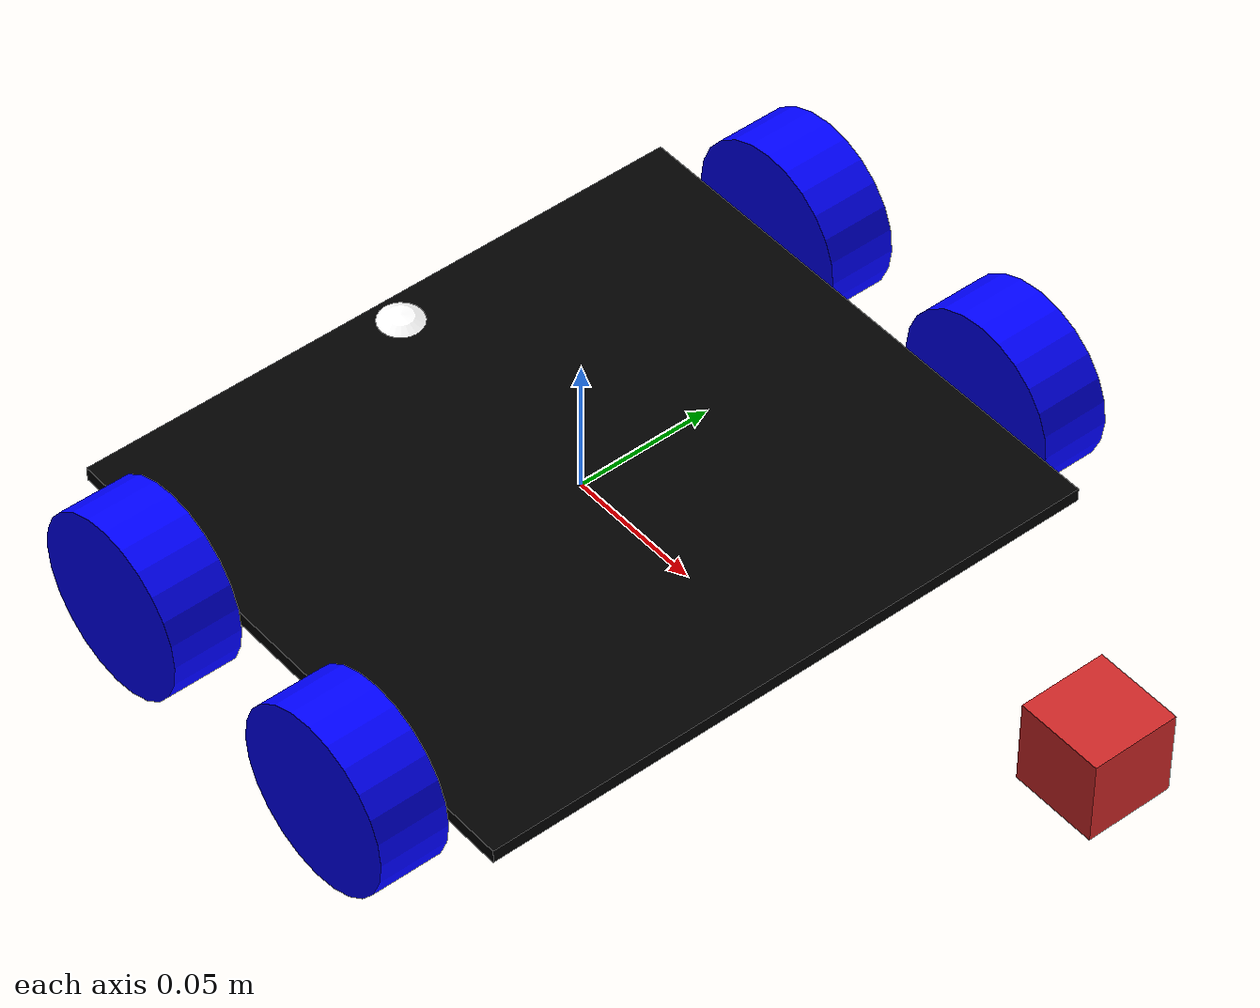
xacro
<?xml version="1.0"?>
<robot name="visual" xmlns:xacro="http://www.ros.org/wiki/xacro">
    <xacro:include filename="core.urdf.xacro"/>
    <xacro:include filename="camera.urdf.xacro"/>
    <xacro:include filename="lidar.urdf.xacro"/>
    <xacro:include filename="inertial_measuring_unit.urdf.xacro"/>

    <ros2_control name="my_robot_hardware" type="system">
        <hardware>
             <plugin>gz_ros2_control/GazeboSimSystem</plugin>
        </hardware>
        <!-- Описание управляемых шарниров -->
        <joint name="left_front_wheel_joint">
            <command_interface name="velocity"/><!-- управляем скорость колеса -->
            <state_interface name="position"/><!-- состояние: пройденный угол -->
            <state_interface name="velocity"/><!-- состояние: текущая скорость -->
        </joint>
        <joint name="right_front_wheel_joint">
            <command_interface name="velocity"/>
            <state_interface name="position"/>
            <state_interface name="velocity"/>
        </joint>
        <joint name="left_rear_wheel_joint">
            <command_interface name="velocity"/>
            <state_interface name="position"/>
            <state_interface name="velocity"/>
        </joint>
        <joint name="right_rear_wheel_joint">
            <command_interface name="velocity"/>
            <state_interface name="position"/>
            <state_interface name="velocity"/>
        </joint>
    </ros2_control>

    <gazebo>
        <plugin filename="libgz_ros2_control-system.so" name="gz_ros2_control::GazeboSimROS2ControlPlugin">
            <parameters>$(find robot_tppo)/config/diff_drive_controllers.yaml</parameters>
        </plugin>
    </gazebo>
</robot>

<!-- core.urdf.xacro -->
<robot xmlns:xacro="http://www.ros.org/wiki/xacro" >
<material name="blue">
        <color rgba="0 0 1 1"/>
    </material>
    <material name="black">
        <color rgba="0 0 0 1"/>
    </material>
    <material name="white">
        <color rgba="1 1 1 1"/>
    </material>

    <!-- Odom link (корень без инерции) -->
    <link name="odom"/>

    <!-- Основная платформа (с инерцией) -->
    <link name="base_link">
        <visual>
            <geometry>
                <box size="0.2 0.23 0.005"/>
            </geometry>
            <material name="black"/>
        </visual>
        <collision>
            <geometry>
                <box size="0.2 0.23 0.005"/>
            </geometry>
        </collision>
        <inertial>
            <mass value="10"/>
            <inertia ixx="1e-3" ixy="0" ixz="0"
                     iyy="1e-3" iyz="0" izz="1e-3"/>
        </inertial>
    </link>

    <joint name="base_link_joint" type="fixed">
        <parent link="odom"/>
        <child link="base_link"/>
        <origin xyz="0 0 0" rpy="0 0 0"/>
    </joint>

    <!-- Промежуточное звено (left_front_base) -->
    <link name="left_front_base">
        <visual>
            <geometry>
                <box size="0.01 0.01 0.01"/>
            </geometry>
        </visual>
    </link>

    <joint name="left_front_base_joint" type="fixed">
        <parent link="base_link"/>
        <child link="left_front_base"/>
        <!-- Joint находится в позиции оси колеса -->
        <origin xyz="0.05 0.13 0"/>
    </joint>

    <!-- Переднее левое колесо -->
    <link name="left_front_wheel">
        <visual>
            <origin rpy="1.57075 0 0" xyz="0 0 0"/>
            <geometry>
                <cylinder length="0.025" radius="0.0325"/>
            </geometry>
            <material name="blue"/>
        </visual>
        <collision>
            <origin rpy="1.57075 0 0" xyz="0 0 0"/>
            <geometry>
                <cylinder length="0.025" radius="0.0325"/>
            </geometry>
        </collision>
        <inertial>
            <mass value="1"/>
            <inertia ixx="1e-3" ixy="0" ixz="0"
                     iyy="1e-3" iyz="0" izz="1e-3"/>
        </inertial>
    </link>

    <joint name="left_front_wheel_joint" type="continuous">
        <axis xyz="0 1 0"/>
        <parent link="left_front_base"/>
        <child link="left_front_wheel"/>
        <!-- Колесо на нулевой позиции относительно промежуточного звена -->
        <origin xyz="0 0 0" rpy="0 0 0"/>
        <command_interface name="velocity"/><!-- управляем скорость колеса -->
        <state_interface name="position"/><!-- состояние: пройденный угол -->
        <state_interface name="velocity"/><!-- состояние: текущая скорость -->
    </joint>

    <!-- Промежуточное звено (right_front_base) -->
    <link name="right_front_base">
        <visual>
            <geometry>
                <box size="0.01 0.01 0.01"/>
            </geometry>
        </visual>
    </link>

    <joint name="right_front_base_joint" type="fixed">
        <parent link="base_link"/>
        <child link="right_front_base"/>
        <!-- Joint находится в позиции оси колеса -->
        <origin xyz="0.05 -0.13 0"/>
    </joint>

    <!-- Переднее правое колесо -->
    <link name="right_front_wheel">
        <visual>
            <origin rpy="1.57075 0 0" xyz="0 0 0"/>
            <geometry>
                <cylinder length="0.025" radius="0.0325"/>
            </geometry>
            <material name="blue"/>
        </visual>
        <collision>
            <origin rpy="1.57075 0 0" xyz="0 0 0"/>
            <geometry>
                <cylinder length="0.025" radius="0.0325"/>
            </geometry>
        </collision>
        <inertial>
            <mass value="1"/>
            <inertia ixx="1e-3" ixy="0" ixz="0"
                     iyy="1e-3" iyz="0" izz="1e-3"/>
        </inertial>
    </link>

    <joint name="right_front_wheel_joint" type="continuous">
        <axis xyz="0 1 0"/>
        <parent link="right_front_base"/>
        <child link="right_front_wheel"/>
        <!-- Колесо на нулевой позиции относительно промежуточного звена -->
        <origin xyz="0 0 0" rpy="0 0 0"/>
        <command_interface name="velocity"/><!-- управляем скорость колеса -->
        <state_interface name="position"/><!-- состояние: пройденный угол -->
        <state_interface name="velocity"/><!-- состояние: текущая скорость -->
    </joint>

    <!-- Промежуточное звено (left_rear_base) -->
    <link name="left_rear_base">
        <visual>
            <geometry>
                <box size="0.01 0.01 0.01"/>
            </geometry>
        </visual>
    </link>

    <joint name="left_rear_base_joint" type="fixed">
        <parent link="base_link"/>
        <child link="left_rear_base"/>
        <!-- Joint находится в позиции оси колеса -->
        <origin xyz="-0.05 0.13 0"/>
    </joint>

    <!-- Заднее левое колесо -->
    <link name="left_rear_wheel">
        <visual>
            <origin rpy="1.57075 0 0" xyz="0 0 0"/>
            <geometry>
                <cylinder length="0.025" radius="0.0325"/>
            </geometry>
            <material name="blue"/>
        </visual>
        <collision>
            <origin rpy="1.57075 0 0" xyz="0 0 0"/>
            <geometry>
                <cylinder length="0.025" radius="0.0325"/>
            </geometry>
        </collision>
        <inertial>
            <mass value="1"/>
            <inertia ixx="1e-3" ixy="0" ixz="0"
                     iyy="1e-3" iyz="0" izz="1e-3"/>
        </inertial>
    </link>

    <joint name="left_rear_wheel_joint" type="continuous">
        <axis xyz="0 1 0"/>
        <parent link="left_rear_base"/>
        <child link="left_rear_wheel"/>
        <!-- Колесо на нулевой позиции относительно промежуточного звена -->
        <origin xyz="0 0 0" rpy="0 0 0"/>
        <command_interface name="velocity"/><!-- управляем скорость колеса -->
        <state_interface name="position"/><!-- состояние: пройденный угол -->
        <state_interface name="velocity"/><!-- состояние: текущая скорость -->
    </joint>

    <!-- Промежуточное звено (right_rear_base) -->
    <link name="right_rear_base">
        <visual>
            <geometry>
                <box size="0.01 0.01 0.01"/>
            </geometry>
        </visual>
    </link>

    <joint name="right_rear_base_joint" type="fixed">
        <parent link="base_link"/>
        <child link="right_rear_base"/>
        <!-- Joint находится в позиции оси колеса -->
        <origin xyz="-0.05 -0.13 0"/>
    </joint>

    <!-- Заднее правое колесо -->
    <link name="right_rear_wheel">
        <visual>
            <origin rpy="1.57075 0 0" xyz="0 0 0"/>
            <geometry>
                <cylinder length="0.025" radius="0.0325"/>
            </geometry>
            <material name="blue"/>
        </visual>
        <collision>
            <origin rpy="1.57075 0 0" xyz="0 0 0"/>
            <geometry>
                <cylinder length="0.025" radius="0.0325"/>
            </geometry>
        </collision>
        <inertial>
            <mass value="1"/>
            <inertia ixx="1e-3" ixy="0" ixz="0"
                     iyy="1e-3" iyz="0" izz="1e-3"/>
        </inertial>
    </link>

    <joint name="right_rear_wheel_joint" type="continuous">
        <axis xyz="0 1 0"/>
        <parent link="right_rear_base"/>
        <child link="right_rear_wheel"/>
        <!-- Колесо на нулевой позиции относительно промежуточного звена -->
        <origin xyz="0 0 0" rpy="0 0 0"/>
        <command_interface name="velocity"/><!-- управляем скорость колеса -->
        <state_interface name="position"/><!-- состояние: пройденный угол -->
        <state_interface name="velocity"/><!-- состояние: текущая скорость -->
    </joint>

    <link name="caster_wheel">
        <visual>
            <origin xyz="0 0 0" rpy="0 0 0"/>
            <geometry>
                <sphere radius="0.015"/>
            </geometry>
            <material name="white"/>
        </visual>
        <collision>
            <origin xyz="0 0 0" rpy="0 0 0"/>
            <geometry>
                <sphere radius="0.015"/>
            </geometry>
        </collision>
        <inertial>
            <mass value="0.1"/>
            <inertia ixx="1e-4" ixy="0" ixz="0"
                     iyy="1e-3" iyz="0" izz="1e-3"/>
        </inertial>
    </link>

    <joint name="caster_wheel_joint" type="fixed">
        <parent link="base_link"/>
        <child link="caster_wheel"/>
        <origin xyz="-0.09 0 -0.01"/>
    </joint>
</robot>

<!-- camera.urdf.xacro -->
<robot xmlns:xacro="http://www.ros.org/wiki/xacro" >
      <!-- STEP 7 - Camera -->
    <joint type="fixed" name="camera_joint">
        <origin xyz="0.225 0 0.075" rpy="0 0 0"/>
        <child link="camera_link"/>
        <parent link="base_link"/>
        <axis xyz="0 1 0" />
    </joint>

    <link name='camera_link'>
        <pose>0 0 0 0 0 0</pose>
        <inertial>
            <mass value="0.1"/>
            <origin xyz="0 0 0" rpy="0 0 0"/>
            <inertia
                ixx="1e-6" ixy="0" ixz="0"
                iyy="1e-6" iyz="0"
                izz="1e-6"
                />
        </inertial>

        <collision name='collision'>
            <origin xyz="0 0 0" rpy="0 0 0"/>
            <geometry>
                <box size=".03 .03 .03"/>
            </geometry>
        </collision>

        <visual name='camera_link_visual'>
            <origin xyz="0 0 0" rpy="0 0 0"/>
            <geometry>
                <box size=".03 .03 .03"/>
            </geometry>
        </visual>

    </link>

    <gazebo reference="camera_link">
        <material>Gazebo/Red</material>
    </gazebo>

    <joint type="fixed" name="camera_optical_joint">
        <origin xyz="0 0 0" rpy="-1.5707 0 -1.5707"/>
        <child link="camera_link_optical"/>
        <parent link="camera_link"/>
    </joint>

    <link name="camera_link_optical">
    </link>

    <gazebo reference="camera_link">
        <sensor name="camera" type="camera">
            <camera name="head">
                <horizontal_fov>1.3962634</horizontal_fov>
                <image>
                    <width>640</width>
                    <height>480</height>
                    <format>R8G8B8</format>
                </image>
                <clip>
                    <near>0.1</near>
                    <far>15</far>
                </clip>
                <noise>
                    <type>gaussian</type>
                    <mean>0.0</mean>
                    <stddev>0.007</stddev>
                </noise>
                <optical_frame_id>camera_link_optical</optical_frame_id>
                <camera_info_topic>camera/camera_info</camera_info_topic>
            </camera>
            <always_on>1</always_on>
            <visualize>true</visualize>
            <update_rate>20</update_rate>
            <topic>camera/image</topic>
        </sensor>
    </gazebo>
</robot>

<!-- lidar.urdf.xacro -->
<robot xmlns:xacro="http://www.ros.org/wiki/xacro" >

<joint type="fixed" name="scan_joint">
    <origin xyz="0.0 0 0.15" rpy="0 0 0"/>
    <child link="scan_link"/>
    <parent link="base_link"/>
    <axis xyz="0 1 0" rpy="0 0 0"/>
  </joint>

  <link name='scan_link'>
    <inertial>
      <mass value="1e-5"/>
      <origin xyz="0 0 0" rpy="0 0 0"/>
      <inertia
          ixx="1e-6" ixy="0" ixz="0"
          iyy="1e-6" iyz="0"
          izz="1e-6"
      />
    </inertial>
    <collision name='collision'>
      <origin xyz="0 0 0" rpy="0 0 0"/>
      <geometry>
        <box size=".1 .1 .1"/>
      </geometry>
    </collision>

</link>

  <gazebo reference="scan_link">
    <sensor name="gpu_lidar" type="gpu_lidar">
      <update_rate>10</update_rate>
      <topic>scan</topic>
      <gz_frame_id>scan_link</gz_frame_id>
      <lidar>
        <scan>
          <horizontal>
            <samples>30</samples>
            <!--(max_angle-min_angle)/samples * resolution -->
            <resolution>1</resolution>
            <min_angle>-3.14156</min_angle>
            <max_angle>3.14156</max_angle>
          </horizontal>
          <!-- Dirty hack for fake lidar detections with ogre 1 rendering in VM -->
        </scan>
        <range>
          <min>0.05</min>
          <max>10.0</max>
          <resolution>0.01</resolution>
        </range>
        <noise>
            <type>gaussian</type>
            <mean>0.0</mean>
            <stddev>0.01</stddev>
        </noise>
        <frame_id>scan_link</frame_id>
      </lidar>
      <always_on>1</always_on>
      <visualize>true</visualize>
    </sensor>
  </gazebo>
</robot>

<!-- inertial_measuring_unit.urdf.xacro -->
<robot xmlns:xacro="http://www.ros.org/wiki/xacro" >
  <!-- STEP 8 - IMU -->
  <joint name="imu_joint" type="fixed">
    <origin xyz="0 0 0" rpy="0 0 0" />
    <parent link="base_link"/>
    <child link="imu_link" />
  </joint>

  <link name="imu_link">
  </link>

  <gazebo reference="imu_link">
    <sensor name="imu" type="imu">
      <always_on>1</always_on>
      <update_rate>50</update_rate>
      <visualize>true</visualize>
      <topic>imu</topic>
      <enable_metrics>true</enable_metrics>
      <gz_frame_id>imu_link</gz_frame_id>
    </sensor>
  </gazebo>
</robot>
